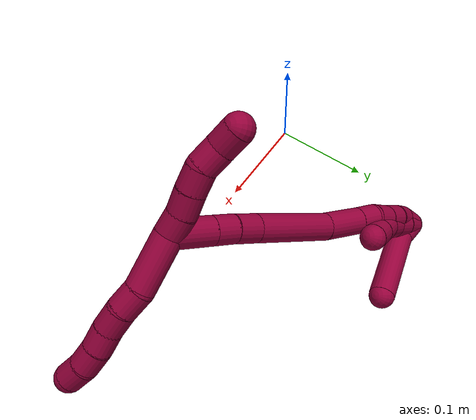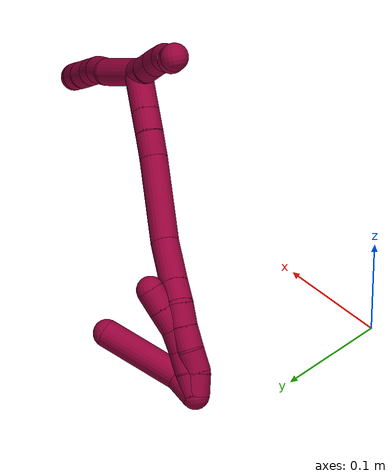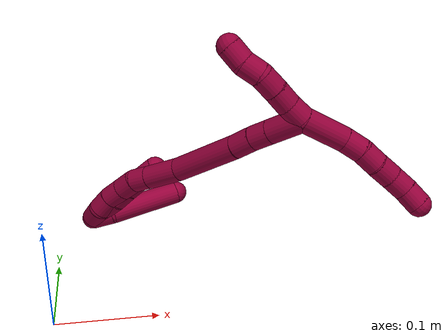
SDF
<sdf version="1.7">
 <world name="default">
  <model name="8">
   <static>0</static>
   <link name="8">
    <collision name="collision-cylinder-e_1_2_8">
     <pose>0.023311 0.003019 0.004038 -0.642019 1.35779 -0.524217</pose>
     <geometry><cylinder><radius>0.0125</radius><length>0.047699</length></cylinder></geometry>
     <surface>
      <friction><ode><mu>1.16</mu><mu2>1.16</mu2><slip1>0</slip1><slip2>0</slip2></ode></friction>
      <contact><ode><kp>1e+06</kp><kd>1</kd><max_vel>0</max_vel><min_depth>0.001</min_depth></ode></contact>
     </surface>
    </collision>
    <visual name="visual-cylinder-e_1_2_8">
     <pose>0.023311 0.003019 0.004038 -0.642019 1.35779 -0.524217</pose>
     <geometry><cylinder><radius>0.0125</radius><length>0.047699</length></cylinder></geometry>
     <material><ambient>0.584314 0 0.227451 1</ambient></material>
    </visual>
    <collision name="collision-cylinder-e_2_8_9">
     <pose>0.056999 0.004499 0.010415 0.581986 1.30727 0.450998</pose>
     <geometry><cylinder><radius>0.0125</radius><length>0.021498</length></cylinder></geometry>
     <surface>
      <friction><ode><mu>1.16</mu><mu2>1.16</mu2><slip1>0</slip1><slip2>0</slip2></ode></friction>
      <contact><ode><kp>1e+06</kp><kd>1</kd><max_vel>0</max_vel><min_depth>0.001</min_depth></ode></contact>
     </surface>
    </collision>
    <visual name="visual-cylinder-e_2_8_9">
     <pose>0.056999 0.004499 0.010415 0.581986 1.30727 0.450998</pose>
     <geometry><cylinder><radius>0.0125</radius><length>0.021498</length></cylinder></geometry>
     <material><ambient>0.584314 0 0.227451 1</ambient></material>
    </visual>
    <collision name="collision-cylinder-e_3_9_10">
     <pose>0.077498 0.0012 0.013109 1.37137 1.39524 1.20221</pose>
     <geometry><cylinder><radius>0.0125</radius><length>0.020558</length></cylinder></geometry>
     <surface>
      <friction><ode><mu>1.16</mu><mu2>1.16</mu2><slip1>0</slip1><slip2>0</slip2></ode></friction>
      <contact><ode><kp>1e+06</kp><kd>1</kd><max_vel>0</max_vel><min_depth>0.001</min_depth></ode></contact>
     </surface>
    </collision>
    <visual name="visual-cylinder-e_3_9_10">
     <pose>0.077498 0.0012 0.013109 1.37137 1.39524 1.20221</pose>
     <geometry><cylinder><radius>0.0125</radius><length>0.020558</length></cylinder></geometry>
     <material><ambient>0.584314 0 0.227451 1</ambient></material>
    </visual>
    <collision name="collision-cylinder-e_4_10_11">
     <pose>0.09763 -0.001079 0.013574 1.36485 1.51782 1.31327</pose>
     <geometry><cylinder><radius>0.0125</radius><length>0.020051</length></cylinder></geometry>
     <surface>
      <friction><ode><mu>1.16</mu><mu2>1.16</mu2><slip1>0</slip1><slip2>0</slip2></ode></friction>
      <contact><ode><kp>1e+06</kp><kd>1</kd><max_vel>0</max_vel><min_depth>0.001</min_depth></ode></contact>
     </surface>
    </collision>
    <visual name="visual-cylinder-e_4_10_11">
     <pose>0.09763 -0.001079 0.013574 1.36485 1.51782 1.31327</pose>
     <geometry><cylinder><radius>0.0125</radius><length>0.020051</length></cylinder></geometry>
     <material><ambient>0.584314 0 0.227451 1</ambient></material>
    </visual>
    <collision name="collision-cylinder-e_5_11_12">
     <pose>0.117539 -0.003365 0.014262 1.25352 1.38515 1.08205</pose>
     <geometry><cylinder><radius>0.0125</radius><length>0.020142</length></cylinder></geometry>
     <surface>
      <friction><ode><mu>1.16</mu><mu2>1.16</mu2><slip1>0</slip1><slip2>0</slip2></ode></friction>
      <contact><ode><kp>1e+06</kp><kd>1</kd><max_vel>0</max_vel><min_depth>0.001</min_depth></ode></contact>
     </surface>
    </collision>
    <visual name="visual-cylinder-e_5_11_12">
     <pose>0.117539 -0.003365 0.014262 1.25352 1.38515 1.08205</pose>
     <geometry><cylinder><radius>0.0125</radius><length>0.020142</length></cylinder></geometry>
     <material><ambient>0.584314 0 0.227451 1</ambient></material>
    </visual>
    <collision name="collision-cylinder-e_6_12_6">
     <pose>0.136645 -0.009039 0.01552 1.39904 1.16403 1.01141</pose>
     <geometry><cylinder><radius>0.0125</radius><length>0.020052</length></cylinder></geometry>
     <surface>
      <friction><ode><mu>1.16</mu><mu2>1.16</mu2><slip1>0</slip1><slip2>0</slip2></ode></friction>
      <contact><ode><kp>1e+06</kp><kd>1</kd><max_vel>0</max_vel><min_depth>0.001</min_depth></ode></contact>
     </surface>
    </collision>
    <visual name="visual-cylinder-e_6_12_6">
     <pose>0.136645 -0.009039 0.01552 1.39904 1.16403 1.01141</pose>
     <geometry><cylinder><radius>0.0125</radius><length>0.020052</length></cylinder></geometry>
     <material><ambient>0.584314 0 0.227451 1</ambient></material>
    </visual>
    <collision name="collision-cylinder-e_1_2_13">
     <pose>-0.00992 0.001263 4.6e-05 -1.53453 -1.44412 1.40823</pose>
     <geometry><cylinder><radius>0.0125</radius><length>0.02</length></cylinder></geometry>
     <surface>
      <friction><ode><mu>1.16</mu><mu2>1.16</mu2><slip1>0</slip1><slip2>0</slip2></ode></friction>
      <contact><ode><kp>1e+06</kp><kd>1</kd><max_vel>0</max_vel><min_depth>0.001</min_depth></ode></contact>
     </surface>
    </collision>
    <visual name="visual-cylinder-e_1_2_13">
     <pose>-0.00992 0.001263 4.6e-05 -1.53453 -1.44412 1.40823</pose>
     <geometry><cylinder><radius>0.0125</radius><length>0.02</length></cylinder></geometry>
     <material><ambient>0.584314 0 0.227451 1</ambient></material>
    </visual>
    <collision name="collision-cylinder-e_2_13_14">
     <pose>-0.029716 0.002949 0.001602 -0.273758 -1.41323 0.234091</pose>
     <geometry><cylinder><radius>0.0125</radius><length>0.02</length></cylinder></geometry>
     <surface>
      <friction><ode><mu>1.16</mu><mu2>1.16</mu2><slip1>0</slip1><slip2>0</slip2></ode></friction>
      <contact><ode><kp>1e+06</kp><kd>1</kd><max_vel>0</max_vel><min_depth>0.001</min_depth></ode></contact>
     </surface>
    </collision>
    <visual name="visual-cylinder-e_2_13_14">
     <pose>-0.029716 0.002949 0.001602 -0.273758 -1.41323 0.234091</pose>
     <geometry><cylinder><radius>0.0125</radius><length>0.02</length></cylinder></geometry>
     <material><ambient>0.584314 0 0.227451 1</ambient></material>
    </visual>
    <collision name="collision-cylinder-e_3_14_15">
     <pose>-0.049528 0.003995 0.004053 -0.584135 -1.45786 0.52461</pose>
     <geometry><cylinder><radius>0.0125</radius><length>0.02</length></cylinder></geometry>
     <surface>
      <friction><ode><mu>1.16</mu><mu2>1.16</mu2><slip1>0</slip1><slip2>0</slip2></ode></friction>
      <contact><ode><kp>1e+06</kp><kd>1</kd><max_vel>0</max_vel><min_depth>0.001</min_depth></ode></contact>
     </surface>
    </collision>
    <visual name="visual-cylinder-e_3_14_15">
     <pose>-0.049528 0.003995 0.004053 -0.584135 -1.45786 0.52461</pose>
     <geometry><cylinder><radius>0.0125</radius><length>0.02</length></cylinder></geometry>
     <material><ambient>0.584314 0 0.227451 1</ambient></material>
    </visual>
    <collision name="collision-cylinder-e_4_15_16">
     <pose>-0.069011 0.006596 0.002771 -2.41384 -1.26859 2.18628</pose>
     <geometry><cylinder><radius>0.0125</radius><length>0.02</length></cylinder></geometry>
     <surface>
      <friction><ode><mu>1.16</mu><mu2>1.16</mu2><slip1>0</slip1><slip2>0</slip2></ode></friction>
      <contact><ode><kp>1e+06</kp><kd>1</kd><max_vel>0</max_vel><min_depth>0.001</min_depth></ode></contact>
     </surface>
    </collision>
    <visual name="visual-cylinder-e_4_15_16">
     <pose>-0.069011 0.006596 0.002771 -2.41384 -1.26859 2.18628</pose>
     <geometry><cylinder><radius>0.0125</radius><length>0.02</length></cylinder></geometry>
     <material><ambient>0.584314 0 0.227451 1</ambient></material>
    </visual>
    <collision name="collision-cylinder-e_5_16_5">
     <pose>-0.087864 0.012237 0.000542 -1.57268 -1.19598 1.19773</pose>
     <geometry><cylinder><radius>0.0125</radius><length>0.02</length></cylinder></geometry>
     <surface>
      <friction><ode><mu>1.16</mu><mu2>1.16</mu2><slip1>0</slip1><slip2>0</slip2></ode></friction>
      <contact><ode><kp>1e+06</kp><kd>1</kd><max_vel>0</max_vel><min_depth>0.001</min_depth></ode></contact>
     </surface>
    </collision>
    <visual name="visual-cylinder-e_5_16_5">
     <pose>-0.087864 0.012237 0.000542 -1.57268 -1.19598 1.19773</pose>
     <geometry><cylinder><radius>0.0125</radius><length>0.02</length></cylinder></geometry>
     <material><ambient>0.584314 0 0.227451 1</ambient></material>
    </visual>
    <collision name="collision-cylinder-e_1_2_17">
     <pose>-0.004716 0.002059 -0.018104 -3.02834 -0.253261 2.30379</pose>
     <geometry><cylinder><radius>0.0125</radius><length>0.037643</length></cylinder></geometry>
     <surface>
      <friction><ode><mu>1.16</mu><mu2>1.16</mu2><slip1>0</slip1><slip2>0</slip2></ode></friction>
      <contact><ode><kp>1e+06</kp><kd>1</kd><max_vel>0</max_vel><min_depth>0.001</min_depth></ode></contact>
     </surface>
    </collision>
    <visual name="visual-cylinder-e_1_2_17">
     <pose>-0.004716 0.002059 -0.018104 -3.02834 -0.253261 2.30379</pose>
     <geometry><cylinder><radius>0.0125</radius><length>0.037643</length></cylinder></geometry>
     <material><ambient>0.584314 0 0.227451 1</ambient></material>
    </visual>
    <collision name="collision-cylinder-e_2_17_18">
     <pose>-0.012019 0.005228 -0.046192 -3.03092 -0.252061 2.31731</pose>
     <geometry><cylinder><radius>0.0125</radius><length>0.020745</length></cylinder></geometry>
     <surface>
      <friction><ode><mu>1.16</mu><mu2>1.16</mu2><slip1>0</slip1><slip2>0</slip2></ode></friction>
      <contact><ode><kp>1e+06</kp><kd>1</kd><max_vel>0</max_vel><min_depth>0.001</min_depth></ode></contact>
     </surface>
    </collision>
    <visual name="visual-cylinder-e_2_17_18">
     <pose>-0.012019 0.005228 -0.046192 -3.03092 -0.252061 2.31731</pose>
     <geometry><cylinder><radius>0.0125</radius><length>0.020745</length></cylinder></geometry>
     <material><ambient>0.584314 0 0.227451 1</ambient></material>
    </visual>
    <collision name="collision-cylinder-e_3_18_19">
     <pose>-0.016734 0.007335 -0.067442 -3.05324 -0.186002 2.2564</pose>
     <geometry><cylinder><radius>0.0125</radius><length>0.023017</length></cylinder></geometry>
     <surface>
      <friction><ode><mu>1.16</mu><mu2>1.16</mu2><slip1>0</slip1><slip2>0</slip2></ode></friction>
      <contact><ode><kp>1e+06</kp><kd>1</kd><max_vel>0</max_vel><min_depth>0.001</min_depth></ode></contact>
     </surface>
    </collision>
    <visual name="visual-cylinder-e_3_18_19">
     <pose>-0.016734 0.007335 -0.067442 -3.05324 -0.186002 2.2564</pose>
     <geometry><cylinder><radius>0.0125</radius><length>0.023017</length></cylinder></geometry>
     <material><ambient>0.584314 0 0.227451 1</ambient></material>
    </visual>
    <collision name="collision-cylinder-e_4_19_20">
     <pose>-0.027103 0.013784 -0.116216 -2.99727 -0.214077 1.95716</pose>
     <geometry><cylinder><radius>0.0125</radius><length>0.077576</length></cylinder></geometry>
     <surface>
      <friction><ode><mu>1.16</mu><mu2>1.16</mu2><slip1>0</slip1><slip2>0</slip2></ode></friction>
      <contact><ode><kp>1e+06</kp><kd>1</kd><max_vel>0</max_vel><min_depth>0.001</min_depth></ode></contact>
     </surface>
    </collision>
    <visual name="visual-cylinder-e_4_19_20">
     <pose>-0.027103 0.013784 -0.116216 -2.99727 -0.214077 1.95716</pose>
     <geometry><cylinder><radius>0.0125</radius><length>0.077576</length></cylinder></geometry>
     <material><ambient>0.584314 0 0.227451 1</ambient></material>
    </visual>
    <collision name="collision-cylinder-e_5_20_21">
     <pose>-0.042021 0.021572 -0.172234 -3.01607 -0.343739 2.44685</pose>
     <geometry><cylinder><radius>0.0125</radius><length>0.039631</length></cylinder></geometry>
     <surface>
      <friction><ode><mu>1.16</mu><mu2>1.16</mu2><slip1>0</slip1><slip2>0</slip2></ode></friction>
      <contact><ode><kp>1e+06</kp><kd>1</kd><max_vel>0</max_vel><min_depth>0.001</min_depth></ode></contact>
     </surface>
    </collision>
    <visual name="visual-cylinder-e_5_20_21">
     <pose>-0.042021 0.021572 -0.172234 -3.01607 -0.343739 2.44685</pose>
     <geometry><cylinder><radius>0.0125</radius><length>0.039631</length></cylinder></geometry>
     <material><ambient>0.584314 0 0.227451 1</ambient></material>
    </visual>
    <collision name="collision-cylinder-e_6_21_22">
     <pose>-0.052461 0.02501 -0.200066 -3.02389 -0.381137 2.54874</pose>
     <geometry><cylinder><radius>0.0125</radius><length>0.020226</length></cylinder></geometry>
     <surface>
      <friction><ode><mu>1.16</mu><mu2>1.16</mu2><slip1>0</slip1><slip2>0</slip2></ode></friction>
      <contact><ode><kp>1e+06</kp><kd>1</kd><max_vel>0</max_vel><min_depth>0.001</min_depth></ode></contact>
     </surface>
    </collision>
    <visual name="visual-cylinder-e_6_21_22">
     <pose>-0.052461 0.02501 -0.200066 -3.02389 -0.381137 2.54874</pose>
     <geometry><cylinder><radius>0.0125</radius><length>0.020226</length></cylinder></geometry>
     <material><ambient>0.584314 0 0.227451 1</ambient></material>
    </visual>
    <collision name="collision-cylinder-e_7_22_23">
     <pose>-0.057063 0.026285 -0.219667 -3.12476 -0.081604 2.73503</pose>
     <geometry><cylinder><radius>0.0125</radius><length>0.020629</length></cylinder></geometry>
     <surface>
      <friction><ode><mu>1.16</mu><mu2>1.16</mu2><slip1>0</slip1><slip2>0</slip2></ode></friction>
      <contact><ode><kp>1e+06</kp><kd>1</kd><max_vel>0</max_vel><min_depth>0.001</min_depth></ode></contact>
     </surface>
    </collision>
    <visual name="visual-cylinder-e_7_22_23">
     <pose>-0.057063 0.026285 -0.219667 -3.12476 -0.081604 2.73503</pose>
     <geometry><cylinder><radius>0.0125</radius><length>0.020629</length></cylinder></geometry>
     <material><ambient>0.584314 0 0.227451 1</ambient></material>
    </visual>
    <collision name="collision-cylinder-e_8_23_24">
     <pose>-0.059114 0.025709 -0.240087 3.06783 -0.118427 -2.02809</pose>
     <geometry><cylinder><radius>0.0125</radius><length>0.020481</length></cylinder></geometry>
     <surface>
      <friction><ode><mu>1.16</mu><mu2>1.16</mu2><slip1>0</slip1><slip2>0</slip2></ode></friction>
      <contact><ode><kp>1e+06</kp><kd>1</kd><max_vel>0</max_vel><min_depth>0.001</min_depth></ode></contact>
     </surface>
    </collision>
    <visual name="visual-cylinder-e_8_23_24">
     <pose>-0.059114 0.025709 -0.240087 3.06783 -0.118427 -2.02809</pose>
     <geometry><cylinder><radius>0.0125</radius><length>0.020481</length></cylinder></geometry>
     <material><ambient>0.584314 0 0.227451 1</ambient></material>
    </visual>
    <collision name="collision-cylinder-e_9_24_25">
     <pose>-0.060009 0.023185 -0.26007 2.96324 0.031481 0.348544</pose>
     <geometry><cylinder><radius>0.0125</radius><length>0.02001</length></cylinder></geometry>
     <surface>
      <friction><ode><mu>1.16</mu><mu2>1.16</mu2><slip1>0</slip1><slip2>0</slip2></ode></friction>
      <contact><ode><kp>1e+06</kp><kd>1</kd><max_vel>0</max_vel><min_depth>0.001</min_depth></ode></contact>
     </surface>
    </collision>
    <visual name="visual-cylinder-e_9_24_25">
     <pose>-0.060009 0.023185 -0.26007 2.96324 0.031481 0.348544</pose>
     <geometry><cylinder><radius>0.0125</radius><length>0.02001</length></cylinder></geometry>
     <material><ambient>0.584314 0 0.227451 1</ambient></material>
    </visual>
    <collision name="collision-cylinder-e_10_25_1">
     <pose>-0.057838 0.022742 -0.279668 -3.00602 0.186316 -1.88482</pose>
     <geometry><cylinder><radius>0.0125</radius><length>0.020041</length></cylinder></geometry>
     <surface>
      <friction><ode><mu>1.16</mu><mu2>1.16</mu2><slip1>0</slip1><slip2>0</slip2></ode></friction>
      <contact><ode><kp>1e+06</kp><kd>1</kd><max_vel>0</max_vel><min_depth>0.001</min_depth></ode></contact>
     </surface>
    </collision>
    <visual name="visual-cylinder-e_10_25_1">
     <pose>-0.057838 0.022742 -0.279668 -3.00602 0.186316 -1.88482</pose>
     <geometry><cylinder><radius>0.0125</radius><length>0.020041</length></cylinder></geometry>
     <material><ambient>0.584314 0 0.227451 1</ambient></material>
    </visual>
    <collision name="collision-cylinder-e_1_1_26">
     <pose>-0.055655 0.02522 -0.279496 -0.115028 0.032673 -0.001881</pose>
     <geometry><cylinder><radius>0.0125</radius><length>0.02</length></cylinder></geometry>
     <surface>
      <friction><ode><mu>1.16</mu><mu2>1.16</mu2><slip1>0</slip1><slip2>0</slip2></ode></friction>
      <contact><ode><kp>1e+06</kp><kd>1</kd><max_vel>0</max_vel><min_depth>0.001</min_depth></ode></contact>
     </surface>
    </collision>
    <visual name="visual-cylinder-e_1_1_26">
     <pose>-0.055655 0.02522 -0.279496 -0.115028 0.032673 -0.001881</pose>
     <geometry><cylinder><radius>0.0125</radius><length>0.02</length></cylinder></geometry>
     <material><ambient>0.584314 0 0.227451 1</ambient></material>
    </visual>
    <collision name="collision-cylinder-e_2_26_27">
     <pose>-0.054106 0.026977 -0.259661 -0.061475 0.122537 -0.003772</pose>
     <geometry><cylinder><radius>0.0125</radius><length>0.02</length></cylinder></geometry>
     <surface>
      <friction><ode><mu>1.16</mu><mu2>1.16</mu2><slip1>0</slip1><slip2>0</slip2></ode></friction>
      <contact><ode><kp>1e+06</kp><kd>1</kd><max_vel>0</max_vel><min_depth>0.001</min_depth></ode></contact>
     </surface>
    </collision>
    <visual name="visual-cylinder-e_2_26_27">
     <pose>-0.054106 0.026977 -0.259661 -0.061475 0.122537 -0.003772</pose>
     <geometry><cylinder><radius>0.0125</radius><length>0.02</length></cylinder></geometry>
     <material><ambient>0.584314 0 0.227451 1</ambient></material>
    </visual>
    <collision name="collision-cylinder-e_3_27_28">
     <pose>-0.052244 0.029416 -0.239945 -0.184344 0.064013 -0.005919</pose>
     <geometry><cylinder><radius>0.0125</radius><length>0.02</length></cylinder></geometry>
     <surface>
      <friction><ode><mu>1.16</mu><mu2>1.16</mu2><slip1>0</slip1><slip2>0</slip2></ode></friction>
      <contact><ode><kp>1e+06</kp><kd>1</kd><max_vel>0</max_vel><min_depth>0.001</min_depth></ode></contact>
     </surface>
    </collision>
    <visual name="visual-cylinder-e_3_27_28">
     <pose>-0.052244 0.029416 -0.239945 -0.184344 0.064013 -0.005919</pose>
     <geometry><cylinder><radius>0.0125</radius><length>0.02</length></cylinder></geometry>
     <material><ambient>0.584314 0 0.227451 1</ambient></material>
    </visual>
    <collision name="collision-cylinder-e_4_28_29">
     <pose>-0.049865 0.03492 -0.220998 -0.382472 0.174807 -0.033926</pose>
     <geometry><cylinder><radius>0.0125</radius><length>0.02</length></cylinder></geometry>
     <surface>
      <friction><ode><mu>1.16</mu><mu2>1.16</mu2><slip1>0</slip1><slip2>0</slip2></ode></friction>
      <contact><ode><kp>1e+06</kp><kd>1</kd><max_vel>0</max_vel><min_depth>0.001</min_depth></ode></contact>
     </surface>
    </collision>
    <visual name="visual-cylinder-e_4_28_29">
     <pose>-0.049865 0.03492 -0.220998 -0.382472 0.174807 -0.033926</pose>
     <geometry><cylinder><radius>0.0125</radius><length>0.02</length></cylinder></geometry>
     <material><ambient>0.584314 0 0.227451 1</ambient></material>
    </visual>
    <collision name="collision-cylinder-e_5_29_4">
     <pose>-0.046301 0.042128 -0.202687 -0.367527 0.18353 -0.034204</pose>
     <geometry><cylinder><radius>0.0125</radius><length>0.02</length></cylinder></geometry>
     <surface>
      <friction><ode><mu>1.16</mu><mu2>1.16</mu2><slip1>0</slip1><slip2>0</slip2></ode></friction>
      <contact><ode><kp>1e+06</kp><kd>1</kd><max_vel>0</max_vel><min_depth>0.001</min_depth></ode></contact>
     </surface>
    </collision>
    <visual name="visual-cylinder-e_5_29_4">
     <pose>-0.046301 0.042128 -0.202687 -0.367527 0.18353 -0.034204</pose>
     <geometry><cylinder><radius>0.0125</radius><length>0.02</length></cylinder></geometry>
     <material><ambient>0.584314 0 0.227451 1</ambient></material>
    </visual>
    <collision name="collision-cylinder-e_1_1_30">
     <pose>-0.049418 0.027051 -0.280336 -0.31664 0.601485 -0.098954</pose>
     <geometry><cylinder><radius>0.0125</radius><length>0.023199</length></cylinder></geometry>
     <surface>
      <friction><ode><mu>1.16</mu><mu2>1.16</mu2><slip1>0</slip1><slip2>0</slip2></ode></friction>
      <contact><ode><kp>1e+06</kp><kd>1</kd><max_vel>0</max_vel><min_depth>0.001</min_depth></ode></contact>
     </surface>
    </collision>
    <visual name="visual-cylinder-e_1_1_30">
     <pose>-0.049418 0.027051 -0.280336 -0.31664 0.601485 -0.098954</pose>
     <geometry><cylinder><radius>0.0125</radius><length>0.023199</length></cylinder></geometry>
     <material><ambient>0.584314 0 0.227451 1</ambient></material>
    </visual>
    <collision name="collision-cylinder-e_2_30_3">
     <pose>-0.019505 0.049397 -0.247705 -0.688404 0.653598 -0.241824</pose>
     <geometry><cylinder><radius>0.0125</radius><length>0.076801</length></cylinder></geometry>
     <surface>
      <friction><ode><mu>1.16</mu><mu2>1.16</mu2><slip1>0</slip1><slip2>0</slip2></ode></friction>
      <contact><ode><kp>1e+06</kp><kd>1</kd><max_vel>0</max_vel><min_depth>0.001</min_depth></ode></contact>
     </surface>
    </collision>
    <visual name="visual-cylinder-e_2_30_3">
     <pose>-0.019505 0.049397 -0.247705 -0.688404 0.653598 -0.241824</pose>
     <geometry><cylinder><radius>0.0125</radius><length>0.076801</length></cylinder></geometry>
     <material><ambient>0.584314 0 0.227451 1</ambient></material>
    </visual>
    <collision name="collision-sphere-3">
     <pose>0.003844 0.068765 -0.224162 0 -0 0</pose>
     <geometry><sphere><radius>0.0125</radius></sphere></geometry>
     <surface>
      <friction><ode><mu>1.16</mu><mu2>1.16</mu2><slip1>0</slip1><slip2>0</slip2></ode></friction>
      <contact><ode><kp>1e+06</kp><kd>1</kd><max_vel>0</max_vel><min_depth>0.001</min_depth></ode></contact>
     </surface>
    </collision>
    <visual name="visual-sphere-3">
     <pose>0.003844 0.068765 -0.224162 0 -0 0</pose>
     <geometry><sphere><radius>0.0125</radius></sphere></geometry>
     <material><ambient>0.584314 0 0.227451 1</ambient></material>
    </visual>
    <collision name="collision-sphere-30">
     <pose>-0.042854 0.030029 -0.271248 0 -0 0</pose>
     <geometry><sphere><radius>0.0125</radius></sphere></geometry>
     <surface>
      <friction><ode><mu>1.16</mu><mu2>1.16</mu2><slip1>0</slip1><slip2>0</slip2></ode></friction>
      <contact><ode><kp>1e+06</kp><kd>1</kd><max_vel>0</max_vel><min_depth>0.001</min_depth></ode></contact>
     </surface>
    </collision>
    <visual name="visual-sphere-30">
     <pose>-0.042854 0.030029 -0.271248 0 -0 0</pose>
     <geometry><sphere><radius>0.0125</radius></sphere></geometry>
     <material><ambient>0.584314 0 0.227451 1</ambient></material>
    </visual>
    <collision name="collision-sphere-4">
     <pose>-0.044476 0.045661 -0.193511 0 -0 0</pose>
     <geometry><sphere><radius>0.0125</radius></sphere></geometry>
     <surface>
      <friction><ode><mu>1.16</mu><mu2>1.16</mu2><slip1>0</slip1><slip2>0</slip2></ode></friction>
      <contact><ode><kp>1e+06</kp><kd>1</kd><max_vel>0</max_vel><min_depth>0.001</min_depth></ode></contact>
     </surface>
    </collision>
    <visual name="visual-sphere-4">
     <pose>-0.044476 0.045661 -0.193511 0 -0 0</pose>
     <geometry><sphere><radius>0.0125</radius></sphere></geometry>
     <material><ambient>0.584314 0 0.227451 1</ambient></material>
    </visual>
    <collision name="collision-sphere-29">
     <pose>-0.048126 0.038596 -0.211862 0 -0 0</pose>
     <geometry><sphere><radius>0.0125</radius></sphere></geometry>
     <surface>
      <friction><ode><mu>1.16</mu><mu2>1.16</mu2><slip1>0</slip1><slip2>0</slip2></ode></friction>
      <contact><ode><kp>1e+06</kp><kd>1</kd><max_vel>0</max_vel><min_depth>0.001</min_depth></ode></contact>
     </surface>
    </collision>
    <visual name="visual-sphere-29">
     <pose>-0.048126 0.038596 -0.211862 0 -0 0</pose>
     <geometry><sphere><radius>0.0125</radius></sphere></geometry>
     <material><ambient>0.584314 0 0.227451 1</ambient></material>
    </visual>
    <collision name="collision-sphere-28">
     <pose>-0.051604 0.031245 -0.230134 0 -0 0</pose>
     <geometry><sphere><radius>0.0125</radius></sphere></geometry>
     <surface>
      <friction><ode><mu>1.16</mu><mu2>1.16</mu2><slip1>0</slip1><slip2>0</slip2></ode></friction>
      <contact><ode><kp>1e+06</kp><kd>1</kd><max_vel>0</max_vel><min_depth>0.001</min_depth></ode></contact>
     </surface>
    </collision>
    <visual name="visual-sphere-28">
     <pose>-0.051604 0.031245 -0.230134 0 -0 0</pose>
     <geometry><sphere><radius>0.0125</radius></sphere></geometry>
     <material><ambient>0.584314 0 0.227451 1</ambient></material>
    </visual>
    <collision name="collision-sphere-27">
     <pose>-0.052884 0.027587 -0.249755 0 -0 0</pose>
     <geometry><sphere><radius>0.0125</radius></sphere></geometry>
     <surface>
      <friction><ode><mu>1.16</mu><mu2>1.16</mu2><slip1>0</slip1><slip2>0</slip2></ode></friction>
      <contact><ode><kp>1e+06</kp><kd>1</kd><max_vel>0</max_vel><min_depth>0.001</min_depth></ode></contact>
     </surface>
    </collision>
    <visual name="visual-sphere-27">
     <pose>-0.052884 0.027587 -0.249755 0 -0 0</pose>
     <geometry><sphere><radius>0.0125</radius></sphere></geometry>
     <material><ambient>0.584314 0 0.227451 1</ambient></material>
    </visual>
    <collision name="collision-sphere-26">
     <pose>-0.055328 0.026367 -0.269568 0 -0 0</pose>
     <geometry><sphere><radius>0.0125</radius></sphere></geometry>
     <surface>
      <friction><ode><mu>1.16</mu><mu2>1.16</mu2><slip1>0</slip1><slip2>0</slip2></ode></friction>
      <contact><ode><kp>1e+06</kp><kd>1</kd><max_vel>0</max_vel><min_depth>0.001</min_depth></ode></contact>
     </surface>
    </collision>
    <visual name="visual-sphere-26">
     <pose>-0.055328 0.026367 -0.269568 0 -0 0</pose>
     <geometry><sphere><radius>0.0125</radius></sphere></geometry>
     <material><ambient>0.584314 0 0.227451 1</ambient></material>
    </visual>
    <collision name="collision-sphere-1">
     <pose>-0.055982 0.024073 -0.289425 0 -0 0</pose>
     <geometry><sphere><radius>0.0125</radius></sphere></geometry>
     <surface>
      <friction><ode><mu>1.16</mu><mu2>1.16</mu2><slip1>0</slip1><slip2>0</slip2></ode></friction>
      <contact><ode><kp>1e+06</kp><kd>1</kd><max_vel>0</max_vel><min_depth>0.001</min_depth></ode></contact>
     </surface>
    </collision>
    <visual name="visual-sphere-1">
     <pose>-0.055982 0.024073 -0.289425 0 -0 0</pose>
     <geometry><sphere><radius>0.0125</radius></sphere></geometry>
     <material><ambient>0.584314 0 0.227451 1</ambient></material>
    </visual>
    <collision name="collision-sphere-25">
     <pose>-0.059694 0.021411 -0.269911 0 -0 0</pose>
     <geometry><sphere><radius>0.0125</radius></sphere></geometry>
     <surface>
      <friction><ode><mu>1.16</mu><mu2>1.16</mu2><slip1>0</slip1><slip2>0</slip2></ode></friction>
      <contact><ode><kp>1e+06</kp><kd>1</kd><max_vel>0</max_vel><min_depth>0.001</min_depth></ode></contact>
     </surface>
    </collision>
    <visual name="visual-sphere-25">
     <pose>-0.059694 0.021411 -0.269911 0 -0 0</pose>
     <geometry><sphere><radius>0.0125</radius></sphere></geometry>
     <material><ambient>0.584314 0 0.227451 1</ambient></material>
    </visual>
    <collision name="collision-sphere-24">
     <pose>-0.060324 0.024959 -0.250228 0 -0 0</pose>
     <geometry><sphere><radius>0.0125</radius></sphere></geometry>
     <surface>
      <friction><ode><mu>1.16</mu><mu2>1.16</mu2><slip1>0</slip1><slip2>0</slip2></ode></friction>
      <contact><ode><kp>1e+06</kp><kd>1</kd><max_vel>0</max_vel><min_depth>0.001</min_depth></ode></contact>
     </surface>
    </collision>
    <visual name="visual-sphere-24">
     <pose>-0.060324 0.024959 -0.250228 0 -0 0</pose>
     <geometry><sphere><radius>0.0125</radius></sphere></geometry>
     <material><ambient>0.584314 0 0.227451 1</ambient></material>
    </visual>
    <collision name="collision-sphere-23">
     <pose>-0.057904 0.026458 -0.229946 0 -0 0</pose>
     <geometry><sphere><radius>0.0125</radius></sphere></geometry>
     <surface>
      <friction><ode><mu>1.16</mu><mu2>1.16</mu2><slip1>0</slip1><slip2>0</slip2></ode></friction>
      <contact><ode><kp>1e+06</kp><kd>1</kd><max_vel>0</max_vel><min_depth>0.001</min_depth></ode></contact>
     </surface>
    </collision>
    <visual name="visual-sphere-23">
     <pose>-0.057904 0.026458 -0.229946 0 -0 0</pose>
     <geometry><sphere><radius>0.0125</radius></sphere></geometry>
     <material><ambient>0.584314 0 0.227451 1</ambient></material>
    </visual>
    <collision name="collision-sphere-22">
     <pose>-0.056223 0.026112 -0.209388 0 -0 0</pose>
     <geometry><sphere><radius>0.0125</radius></sphere></geometry>
     <surface>
      <friction><ode><mu>1.16</mu><mu2>1.16</mu2><slip1>0</slip1><slip2>0</slip2></ode></friction>
      <contact><ode><kp>1e+06</kp><kd>1</kd><max_vel>0</max_vel><min_depth>0.001</min_depth></ode></contact>
     </surface>
    </collision>
    <visual name="visual-sphere-22">
     <pose>-0.056223 0.026112 -0.209388 0 -0 0</pose>
     <geometry><sphere><radius>0.0125</radius></sphere></geometry>
     <material><ambient>0.584314 0 0.227451 1</ambient></material>
    </visual>
    <collision name="collision-sphere-21">
     <pose>-0.048699 0.023907 -0.190744 0 -0 0</pose>
     <geometry><sphere><radius>0.0125</radius></sphere></geometry>
     <surface>
      <friction><ode><mu>1.16</mu><mu2>1.16</mu2><slip1>0</slip1><slip2>0</slip2></ode></friction>
      <contact><ode><kp>1e+06</kp><kd>1</kd><max_vel>0</max_vel><min_depth>0.001</min_depth></ode></contact>
     </surface>
    </collision>
    <visual name="visual-sphere-21">
     <pose>-0.048699 0.023907 -0.190744 0 -0 0</pose>
     <geometry><sphere><radius>0.0125</radius></sphere></geometry>
     <material><ambient>0.584314 0 0.227451 1</ambient></material>
    </visual>
    <collision name="collision-sphere-12">
     <pose>0.127437 -0.005131 0.014842 0 -0 0</pose>
     <geometry><sphere><radius>0.0125</radius></sphere></geometry>
     <surface>
      <friction><ode><mu>1.16</mu><mu2>1.16</mu2><slip1>0</slip1><slip2>0</slip2></ode></friction>
      <contact><ode><kp>1e+06</kp><kd>1</kd><max_vel>0</max_vel><min_depth>0.001</min_depth></ode></contact>
     </surface>
    </collision>
    <visual name="visual-sphere-12">
     <pose>0.127437 -0.005131 0.014842 0 -0 0</pose>
     <geometry><sphere><radius>0.0125</radius></sphere></geometry>
     <material><ambient>0.584314 0 0.227451 1</ambient></material>
    </visual>
    <collision name="collision-sphere-11">
     <pose>0.107641 -0.001599 0.013682 0 -0 0</pose>
     <geometry><sphere><radius>0.0125</radius></sphere></geometry>
     <surface>
      <friction><ode><mu>1.16</mu><mu2>1.16</mu2><slip1>0</slip1><slip2>0</slip2></ode></friction>
      <contact><ode><kp>1e+06</kp><kd>1</kd><max_vel>0</max_vel><min_depth>0.001</min_depth></ode></contact>
     </surface>
    </collision>
    <visual name="visual-sphere-11">
     <pose>0.107641 -0.001599 0.013682 0 -0 0</pose>
     <geometry><sphere><radius>0.0125</radius></sphere></geometry>
     <material><ambient>0.584314 0 0.227451 1</ambient></material>
    </visual>
    <collision name="collision-sphere-10">
     <pose>0.087619 -0.000559 0.013465 0 -0 0</pose>
     <geometry><sphere><radius>0.0125</radius></sphere></geometry>
     <surface>
      <friction><ode><mu>1.16</mu><mu2>1.16</mu2><slip1>0</slip1><slip2>0</slip2></ode></friction>
      <contact><ode><kp>1e+06</kp><kd>1</kd><max_vel>0</max_vel><min_depth>0.001</min_depth></ode></contact>
     </surface>
    </collision>
    <visual name="visual-sphere-10">
     <pose>0.087619 -0.000559 0.013465 0 -0 0</pose>
     <geometry><sphere><radius>0.0125</radius></sphere></geometry>
     <material><ambient>0.584314 0 0.227451 1</ambient></material>
    </visual>
    <collision name="collision-sphere-9">
     <pose>0.067377 0.00296 0.012754 0 -0 0</pose>
     <geometry><sphere><radius>0.0125</radius></sphere></geometry>
     <surface>
      <friction><ode><mu>1.16</mu><mu2>1.16</mu2><slip1>0</slip1><slip2>0</slip2></ode></friction>
      <contact><ode><kp>1e+06</kp><kd>1</kd><max_vel>0</max_vel><min_depth>0.001</min_depth></ode></contact>
     </surface>
    </collision>
    <visual name="visual-sphere-9">
     <pose>0.067377 0.00296 0.012754 0 -0 0</pose>
     <geometry><sphere><radius>0.0125</radius></sphere></geometry>
     <material><ambient>0.584314 0 0.227451 1</ambient></material>
    </visual>
    <collision name="collision-sphere-2">
     <geometry><sphere><radius>0.0125</radius></sphere></geometry>
     <surface>
      <friction><ode><mu>1.16</mu><mu2>1.16</mu2><slip1>0</slip1><slip2>0</slip2></ode></friction>
      <contact><ode><kp>1e+06</kp><kd>1</kd><max_vel>0</max_vel><min_depth>0.001</min_depth></ode></contact>
     </surface>
    </collision>
    <visual name="visual-sphere-2">
     <geometry><sphere><radius>0.0125</radius></sphere></geometry>
     <material><ambient>0.584314 0 0.227451 1</ambient></material>
    </visual>
    <collision name="collision-sphere-19">
     <pose>-0.018862 0.008333 -0.078707 0 -0 0</pose>
     <geometry><sphere><radius>0.0125</radius></sphere></geometry>
     <surface>
      <friction><ode><mu>1.16</mu><mu2>1.16</mu2><slip1>0</slip1><slip2>0</slip2></ode></friction>
      <contact><ode><kp>1e+06</kp><kd>1</kd><max_vel>0</max_vel><min_depth>0.001</min_depth></ode></contact>
     </surface>
    </collision>
    <visual name="visual-sphere-19">
     <pose>-0.018862 0.008333 -0.078707 0 -0 0</pose>
     <geometry><sphere><radius>0.0125</radius></sphere></geometry>
     <material><ambient>0.584314 0 0.227451 1</ambient></material>
    </visual>
    <collision name="collision-sphere-8">
     <pose>0.046621 0.006038 0.008076 0 -0 0</pose>
     <geometry><sphere><radius>0.0125</radius></sphere></geometry>
     <surface>
      <friction><ode><mu>1.16</mu><mu2>1.16</mu2><slip1>0</slip1><slip2>0</slip2></ode></friction>
      <contact><ode><kp>1e+06</kp><kd>1</kd><max_vel>0</max_vel><min_depth>0.001</min_depth></ode></contact>
     </surface>
    </collision>
    <visual name="visual-sphere-8">
     <pose>0.046621 0.006038 0.008076 0 -0 0</pose>
     <geometry><sphere><radius>0.0125</radius></sphere></geometry>
     <material><ambient>0.584314 0 0.227451 1</ambient></material>
    </visual>
    <collision name="collision-sphere-6">
     <pose>0.145853 -0.012948 0.016198 0 -0 0</pose>
     <geometry><sphere><radius>0.0125</radius></sphere></geometry>
     <surface>
      <friction><ode><mu>1.16</mu><mu2>1.16</mu2><slip1>0</slip1><slip2>0</slip2></ode></friction>
      <contact><ode><kp>1e+06</kp><kd>1</kd><max_vel>0</max_vel><min_depth>0.001</min_depth></ode></contact>
     </surface>
    </collision>
    <visual name="visual-sphere-6">
     <pose>0.145853 -0.012948 0.016198 0 -0 0</pose>
     <geometry><sphere><radius>0.0125</radius></sphere></geometry>
     <material><ambient>0.584314 0 0.227451 1</ambient></material>
    </visual>
    <collision name="collision-sphere-13">
     <pose>-0.01984 0.002525 9.2e-05 0 -0 0</pose>
     <geometry><sphere><radius>0.0125</radius></sphere></geometry>
     <surface>
      <friction><ode><mu>1.16</mu><mu2>1.16</mu2><slip1>0</slip1><slip2>0</slip2></ode></friction>
      <contact><ode><kp>1e+06</kp><kd>1</kd><max_vel>0</max_vel><min_depth>0.001</min_depth></ode></contact>
     </surface>
    </collision>
    <visual name="visual-sphere-13">
     <pose>-0.01984 0.002525 9.2e-05 0 -0 0</pose>
     <geometry><sphere><radius>0.0125</radius></sphere></geometry>
     <material><ambient>0.584314 0 0.227451 1</ambient></material>
    </visual>
    <collision name="collision-sphere-14">
     <pose>-0.039592 0.003373 0.003113 0 -0 0</pose>
     <geometry><sphere><radius>0.0125</radius></sphere></geometry>
     <surface>
      <friction><ode><mu>1.16</mu><mu2>1.16</mu2><slip1>0</slip1><slip2>0</slip2></ode></friction>
      <contact><ode><kp>1e+06</kp><kd>1</kd><max_vel>0</max_vel><min_depth>0.001</min_depth></ode></contact>
     </surface>
    </collision>
    <visual name="visual-sphere-14">
     <pose>-0.039592 0.003373 0.003113 0 -0 0</pose>
     <geometry><sphere><radius>0.0125</radius></sphere></geometry>
     <material><ambient>0.584314 0 0.227451 1</ambient></material>
    </visual>
    <collision name="collision-sphere-15">
     <pose>-0.059465 0.004616 0.004993 0 -0 0</pose>
     <geometry><sphere><radius>0.0125</radius></sphere></geometry>
     <surface>
      <friction><ode><mu>1.16</mu><mu2>1.16</mu2><slip1>0</slip1><slip2>0</slip2></ode></friction>
      <contact><ode><kp>1e+06</kp><kd>1</kd><max_vel>0</max_vel><min_depth>0.001</min_depth></ode></contact>
     </surface>
    </collision>
    <visual name="visual-sphere-15">
     <pose>-0.059465 0.004616 0.004993 0 -0 0</pose>
     <geometry><sphere><radius>0.0125</radius></sphere></geometry>
     <material><ambient>0.584314 0 0.227451 1</ambient></material>
    </visual>
    <collision name="collision-sphere-16">
     <pose>-0.078558 0.008576 0.000549 0 -0 0</pose>
     <geometry><sphere><radius>0.0125</radius></sphere></geometry>
     <surface>
      <friction><ode><mu>1.16</mu><mu2>1.16</mu2><slip1>0</slip1><slip2>0</slip2></ode></friction>
      <contact><ode><kp>1e+06</kp><kd>1</kd><max_vel>0</max_vel><min_depth>0.001</min_depth></ode></contact>
     </surface>
    </collision>
    <visual name="visual-sphere-16">
     <pose>-0.078558 0.008576 0.000549 0 -0 0</pose>
     <geometry><sphere><radius>0.0125</radius></sphere></geometry>
     <material><ambient>0.584314 0 0.227451 1</ambient></material>
    </visual>
    <collision name="collision-sphere-5">
     <pose>-0.09717 0.015898 0.000535 0 -0 0</pose>
     <geometry><sphere><radius>0.0125</radius></sphere></geometry>
     <surface>
      <friction><ode><mu>1.16</mu><mu2>1.16</mu2><slip1>0</slip1><slip2>0</slip2></ode></friction>
      <contact><ode><kp>1e+06</kp><kd>1</kd><max_vel>0</max_vel><min_depth>0.001</min_depth></ode></contact>
     </surface>
    </collision>
    <visual name="visual-sphere-5">
     <pose>-0.09717 0.015898 0.000535 0 -0 0</pose>
     <geometry><sphere><radius>0.0125</radius></sphere></geometry>
     <material><ambient>0.584314 0 0.227451 1</ambient></material>
    </visual>
    <collision name="collision-sphere-17">
     <pose>-0.009432 0.004118 -0.036209 0 -0 0</pose>
     <geometry><sphere><radius>0.0125</radius></sphere></geometry>
     <surface>
      <friction><ode><mu>1.16</mu><mu2>1.16</mu2><slip1>0</slip1><slip2>0</slip2></ode></friction>
      <contact><ode><kp>1e+06</kp><kd>1</kd><max_vel>0</max_vel><min_depth>0.001</min_depth></ode></contact>
     </surface>
    </collision>
    <visual name="visual-sphere-17">
     <pose>-0.009432 0.004118 -0.036209 0 -0 0</pose>
     <geometry><sphere><radius>0.0125</radius></sphere></geometry>
     <material><ambient>0.584314 0 0.227451 1</ambient></material>
    </visual>
    <collision name="collision-sphere-18">
     <pose>-0.014606 0.006337 -0.056176 0 -0 0</pose>
     <geometry><sphere><radius>0.0125</radius></sphere></geometry>
     <surface>
      <friction><ode><mu>1.16</mu><mu2>1.16</mu2><slip1>0</slip1><slip2>0</slip2></ode></friction>
      <contact><ode><kp>1e+06</kp><kd>1</kd><max_vel>0</max_vel><min_depth>0.001</min_depth></ode></contact>
     </surface>
    </collision>
    <visual name="visual-sphere-18">
     <pose>-0.014606 0.006337 -0.056176 0 -0 0</pose>
     <geometry><sphere><radius>0.0125</radius></sphere></geometry>
     <material><ambient>0.584314 0 0.227451 1</ambient></material>
    </visual>
    <collision name="collision-sphere-20">
     <pose>-0.035343 0.019236 -0.153725 0 -0 0</pose>
     <geometry><sphere><radius>0.0125</radius></sphere></geometry>
     <surface>
      <friction><ode><mu>1.16</mu><mu2>1.16</mu2><slip1>0</slip1><slip2>0</slip2></ode></friction>
      <contact><ode><kp>1e+06</kp><kd>1</kd><max_vel>0</max_vel><min_depth>0.001</min_depth></ode></contact>
     </surface>
    </collision>
    <visual name="visual-sphere-20">
     <pose>-0.035343 0.019236 -0.153725 0 -0 0</pose>
     <geometry><sphere><radius>0.0125</radius></sphere></geometry>
     <material><ambient>0.584314 0 0.227451 1</ambient></material>
    </visual>
    <inertial>
     <pose>-0.016163 0.017205 -0.121579 0 -0 0</pose>
     <mass>0.75</mass>
     <inertia>
      <ixx>6.1e-05</ixx>
      <ixy>0</ixy>
      <ixz>0</ixz>
      <iyy>0.000148</iyy>
      <iyz>0</iyz>
      <izz>-6.4e-05</izz>
     </inertia>
    </inertial>
   </link>
   <pose>0.247239 0.051535 0.174336 0.330994 0.725972 -0.055024</pose>
  </model>
 </world>
</sdf>
